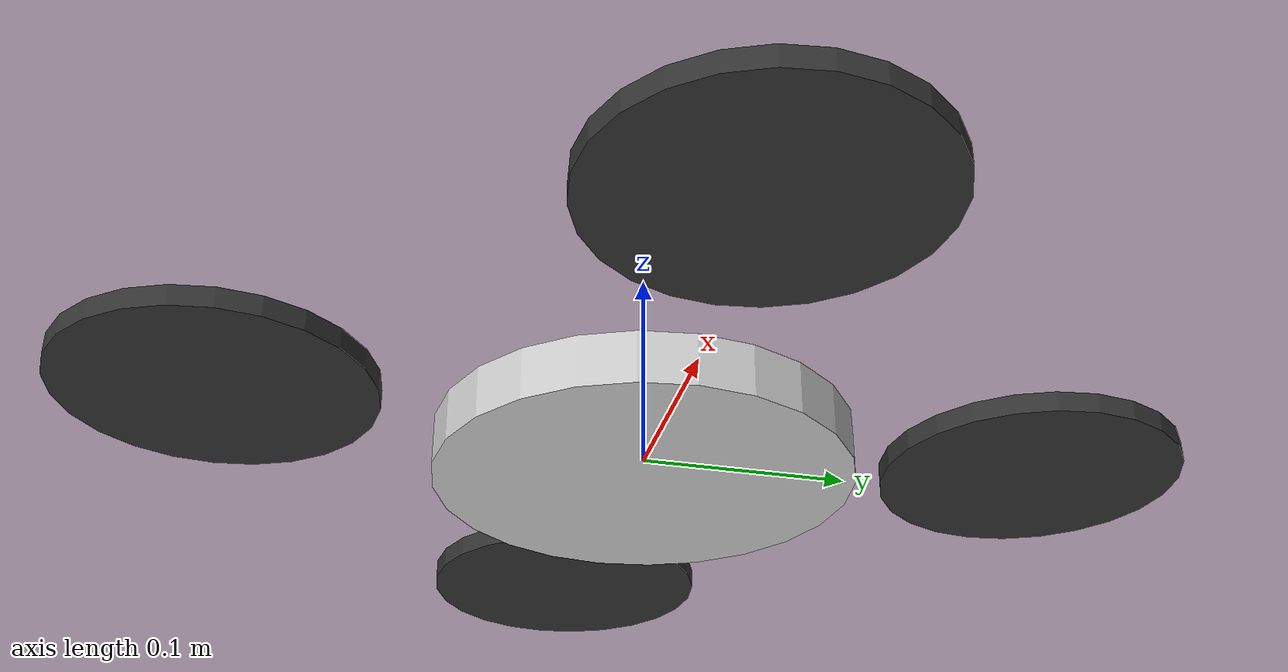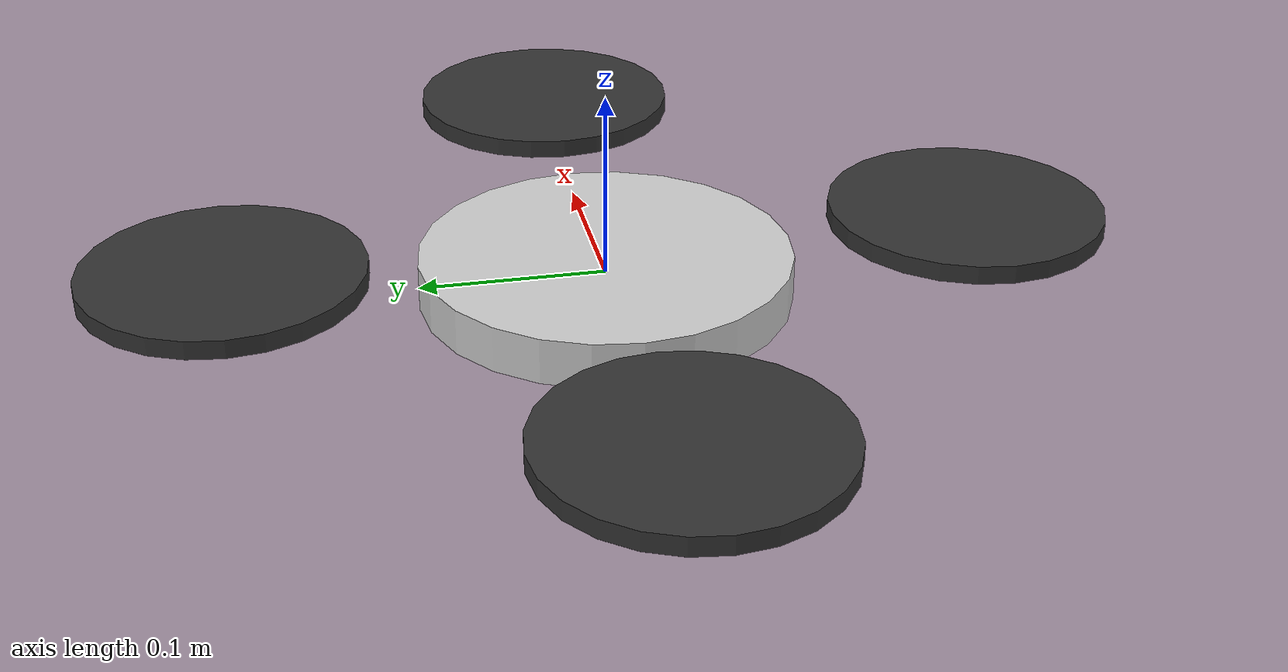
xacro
<?xml version="1.0"?>
<robot xmlns:xacro="http://wiki.ros.org/xacro" name="quadrotor">

  <xacro:property name="frame_radius" value="0.1"/>
  <xacro:property name="frame_height" value="0.025"/>
  <xacro:property name="frame_mass" value="1.0"/>
  <xacro:property name="arm_radius" value="0.0125"/>
  <xacro:property name="arm_length" value="0.1"/>
  <xacro:property name="arm_mass" value="0.0"/>
  <xacro:property name="propeller_radius" value="0.075"/>
  <xacro:property name="propeller_height" value="0.01"/>
  <xacro:property name="propeller_mass" value="0.0"/>

  <link name="frame">
    <visual>
      <origin xyz="0 0 0" rpy="0 0 0"/>
      <geometry>
        <cylinder radius="${frame_radius}" length = "${frame_height}"/>
      </geometry>
      <material name="frame_material">
        <color rgba="0.8 0.8 0.8 1.0"/>
      </material>
    </visual>
    <collision>
      <origin xyz="0 0 0" rpy="0 0 0"/>
      <geometry>
        <cylinder radius="${frame_radius}" length = "${frame_height}"/>
      </geometry>
    </collision>
    <inertial>
      <mass value="1.0"/>
      <origin xyz="0 0 0" rpy="0 0 0"/>
      <inertia ixx="0.00682" ixy="0.0" ixz="0.0" iyy="0.00682" iyz="0.0" izz="0.01335"/>
    </inertial>
  </link>

  <xacro:macro name="propeller" params="i mat">
    <link name="propeller${i}">
      <visual>
        <origin xyz="0 0 0" rpy="0 0 0"/>
        <geometry>
          <cylinder radius="${propeller_radius}" length="${propeller_height}"/>
        </geometry>
        <material name="${mat}"/>
      </visual>
      <collision>
        <origin xyz="0 0 0" rpy="0 0 0"/>
        <geometry>
          <cylinder radius="${propeller_radius}" length="${propeller_height}"/>
        </geometry>
      </collision>
      <inertial>
        <mass value="0.01"/>
          <origin xyz="0 0 0" rpy="0 0 0"/>
          <inertia ixx="0.0000140625" ixy="0.0" ixz="0.0" iyy="0.0000140625" iyz="0.0" izz="0.000028125"/>
      </inertial>
    </link>

    <joint name="rotor${i}" type="continuous">
      <parent link="frame"/>
      <child link="propeller${i}"/>
      <origin xyz="${cos((-i+1)*pi/2)*(frame_radius+arm_length)}
                   ${sin((-i+1)*pi/2)*(frame_radius+arm_length)} 0.016826923076923"
              rpy="0 0 0"/>
      <axis xyz="0 0 1"/>
      <limit effort="10.0" velocity="100.0"/>
    </joint>

    <transmission name="transmission_propeller${i}">
      <type>transmission_interface/SimpleTransmission</type>
      <joint name="rotor${i}">
        <hardwareInterface>hardware_interface/EffortJointInterface</hardwareInterface>
      </joint>
      <actuator name="motor${i}">
        <hardwareInterface>hardware_interface/EffortJointInterface</hardwareInterface>
        <mechanicalReduction>1</mechanicalReduction>
      </actuator>
    </transmission>

    <gazebo reference="propeller${i}">
      <material>Gazebo/CarbonFiber</material>
    </gazebo>
  </xacro:macro>

  <xacro:propeller i="1" mat="propeller_material"/>
  <xacro:propeller i="2" mat="propeller_material"/>
  <xacro:propeller i="3" mat="propeller_material"/>
  <xacro:propeller i="4" mat="propeller_material"/>

  <material name="propeller_material">
    <color rgba="0.2 0.2 0.2 1.0"/> <!-- Dark color to match carbon fiber -->
  </material>

  <gazebo reference="frame">
    <material>Gazebo/Red</material>
  </gazebo>

  <gazebo reference="frame">
    <plugin name="p3d_plugin" filename="libgazebo_ros_p3d.so">
      <alwaysOn>true</alwaysOn>
      <updateRate>1000.0</updateRate>
      <bodyName>frame</bodyName>
      <topicName>odometry</topicName>
      <frameName>map</frameName>
      <xyzOffset>0 0 0</xyzOffset>
      <rpyOffset>0 0 0</rpyOffset>
    </plugin>
  </gazebo>

  <gazebo>
    <plugin name="gazebo_ros_control" filename="libgazebo_ros_control.so">
      <robotNamespace>/quadrotor</robotNamespace>
    </plugin>
  </gazebo>

  <gazebo>
    <plugin name="quadrotor_wrench_plugin" filename="libwrench_plugin.so"/>
  </gazebo>

</robot>
